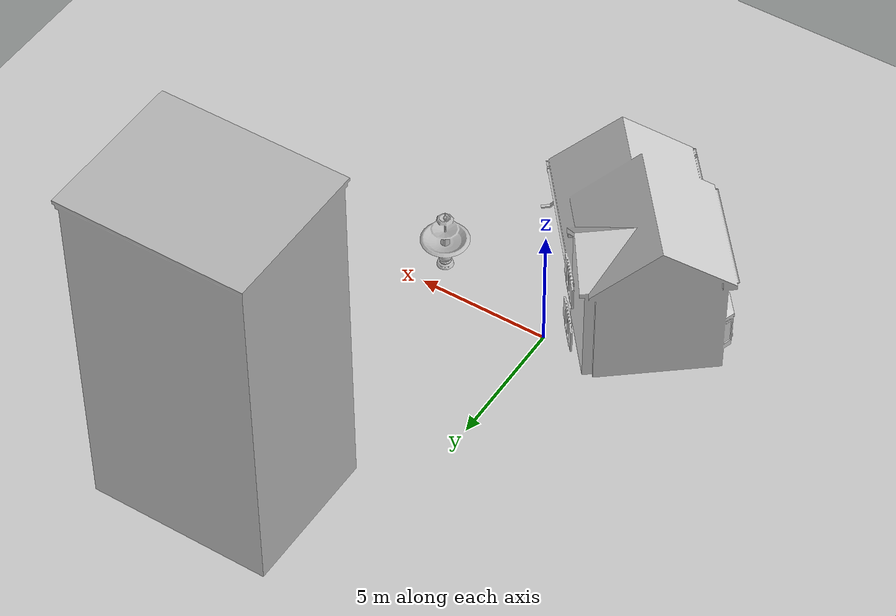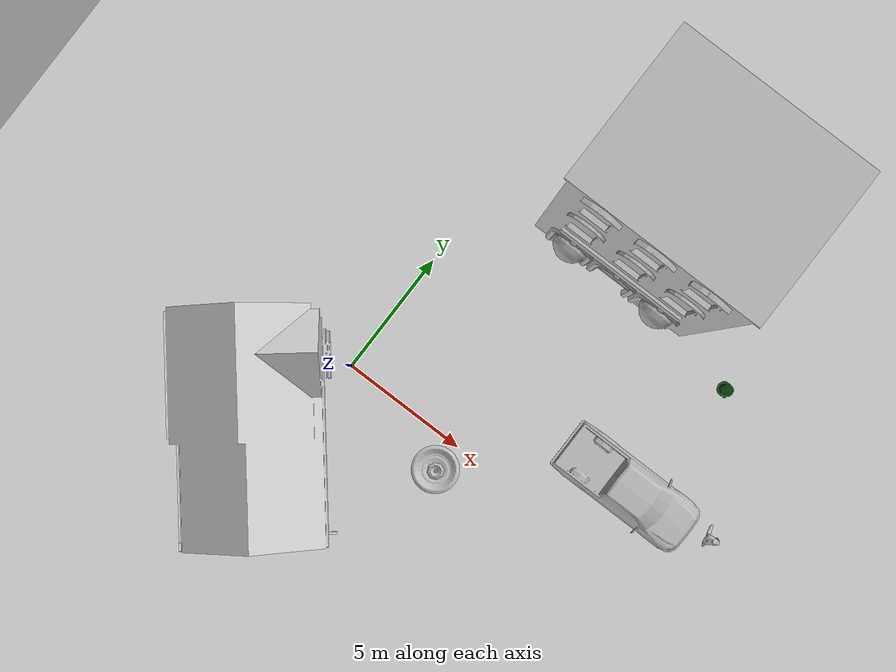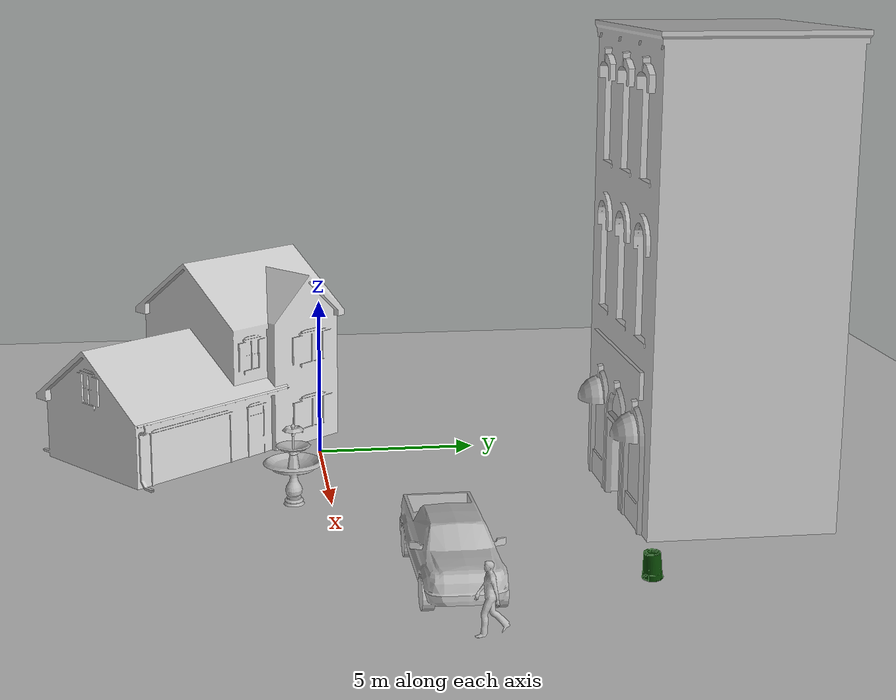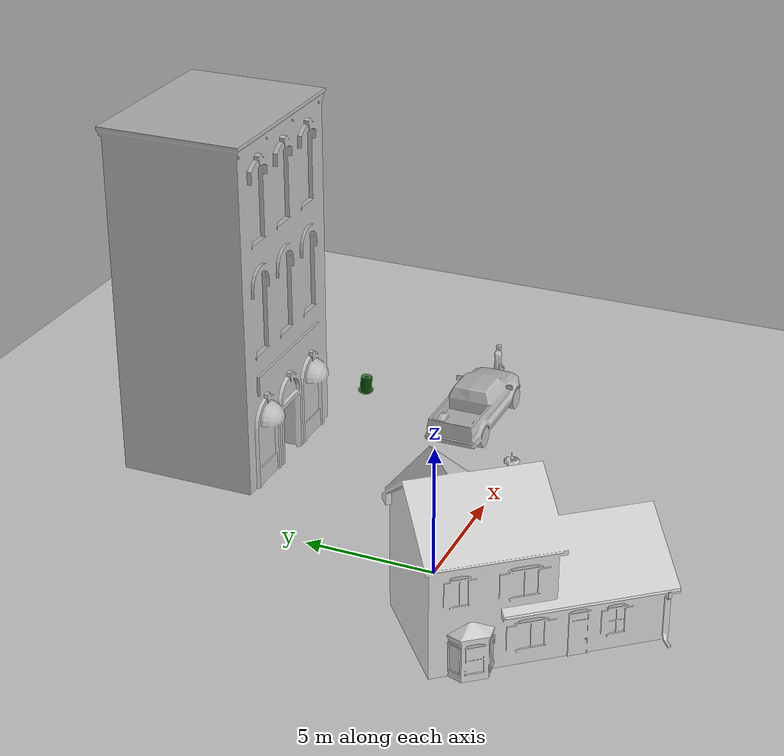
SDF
<sdf version="1.6">
 <world name="default">
  <light name="sun" type="directional">
   <pose>0 0 10 0 -0 0</pose>
   <diffuse>0.8 0.8 0.8 1</diffuse>
   <specular>0.1 0.1 0.1 1</specular>
   <attenuation>
    <range>1000</range>
    <constant>0.9</constant>
    <linear>0.01</linear>
    <quadratic>0.001</quadratic>
   </attenuation>
   <direction>-0.5 0.5 -1</direction>
  </light>
  <model name="ground_plane">
   <static>1</static>
   <link name="link">
    <collision name="collision">
     <geometry><plane><normal>0 0 1</normal><size>100 100</size></plane></geometry>
     <surface><friction><ode><mu>100</mu><mu2>50</mu2></ode></friction></surface>
    </collision>
    <visual name="visual">
     <cast_shadows>0</cast_shadows>
     <geometry><plane><normal>0 0 1</normal><size>100 100</size></plane></geometry>
     <material>
      <script><uri>file://media/materials/scripts/gazebo.material</uri><name>Gazebo/Grey</name></script>
     </material>
    </visual>
   </link>
  </model>
  <gravity>0 0 -9.8</gravity>
  <magnetic_field>6e-06 2.3e-05 -4.2e-05</magnetic_field>
  <atmosphere type="adiabatic"/>
  <physics name="default_physics" default="0" type="ode">
   <max_step_size>0.001</max_step_size>
   <real_time_factor>1</real_time_factor>
   <real_time_update_rate>1000</real_time_update_rate>
  </physics>
  <scene><ambient>0.4 0.4 0.4 1</ambient><background>0.7 0.7 0.7 1</background><shadows>1</shadows></scene>
  <spherical_coordinates>
   <surface_model>EARTH_WGS84</surface_model>
   <latitude_deg>0</latitude_deg>
   <longitude_deg>0</longitude_deg>
   <elevation>0</elevation>
   <heading_deg>0</heading_deg>
  </spherical_coordinates>
  <model name="first_2015_trash_can">
   <link name="link">
    <inertial>
     <pose>0 0 0.3683 0 -0 0</pose>
     <mass>4.83076</mass>
     <inertia>
      <ixx>0.281534</ixx>
      <ixy>0</ixy>
      <ixz>0</ixz>
      <iyy>0.281534</iyy>
      <iyz>0</iyz>
      <izz>0.126223</izz>
     </inertia>
    </inertial>
    <visual name="visual">
     <geometry>
      <mesh><uri>model://first_2015_trash_can/meshes/trash_can.dae</uri><scale>1 1 1</scale></mesh>
     </geometry>
    </visual>
    <collision name="collision">
     <geometry>
      <mesh><uri>model://first_2015_trash_can/meshes/trash_can.dae</uri><scale>1 1 1</scale></mesh>
     </geometry>
    </collision>
   </link>
   <pose>11.6113 7.77139 0.749 -3.06522 -0.004725 0.624155</pose>
  </model>
  <model name="person_walking">
   <link name="link">
    <inertial>
     <pose>0 0 0.95 0 -0 0</pose>
     <mass>80</mass>
     <inertia><ixx>27.82</ixx><ixy>0</ixy><ixz>0</ixz><iyy>24.88</iyy><iyz>0</iyz><izz>4.57</izz></inertia>
    </inertial>
    <collision name="bottom">
     <pose>0 0 0.01 0 -0 0</pose>
     <geometry><box><size>0.35 0.75 0.02</size></box></geometry>
    </collision>
    <collision name="person">
     <pose>0 0 -0.02 0 -0 0</pose>
     <geometry><mesh><uri>model://person_walking/meshes/walking.dae</uri><scale>1 1 1</scale></mesh></geometry>
    </collision>
    <visual name="visual">
     <pose>0 0 -0.02 0 -0 0</pose>
     <geometry><mesh><uri>model://person_walking/meshes/walking.dae</uri><scale>1 1 1</scale></mesh></geometry>
    </visual>
   </link>
   <pose>14.4141 3.04796 0 0 -1e-06 -0.000885</pose>
  </model>
  <model name="law_office">
   <static>1</static>
   <link name="link">
    <collision name="collision">
     <pose>0 0 6.96244 0 -0 0</pose>
     <geometry><box><size>6.84401 5.43165 13.9249</size></box></geometry>
    </collision>
    <visual name="visual">
     <geometry><mesh><uri>model://law_office/meshes/law_office.dae</uri><scale>1 1 1</scale></mesh></geometry>
    </visual>
   </link>
   <pose>5.64011 11.091 0.002541 0 -0 0</pose>
  </model>
  <model name="fountain">
   <static>1</static>
   <link name="link">
    <collision name="collision">
     <geometry><mesh><uri>model://fountain/meshes/fountain.dae</uri><scale>1 1 1</scale></mesh></geometry>
    </collision>
    <visual name="visual">
     <geometry><mesh><uri>model://fountain/meshes/fountain.dae</uri><scale>1 1 1</scale></mesh></geometry>
    </visual>
   </link>
   <pose>4.79062 -1.11221 0 0 -0 0</pose>
  </model>
  <model name="House 3">
   <static>1</static>
   <link name="link">
    <collision name="collision">
     <geometry><mesh><uri>model://house_3/meshes/house_3.dae</uri><scale>1 1 1</scale></mesh></geometry>
    </collision>
    <visual name="visual">
     <geometry><mesh><uri>model://house_3/meshes/house_3.dae</uri><scale>1 1 1</scale></mesh></geometry>
     <material>
      <script>
       <uri>model://house_3/materials/scripts</uri>
       <uri>model://house_3/materials/textures</uri>
       <name>House_3/Diffuse</name>
      </script>
     </material>
    </visual>
   </link>
   <pose>-1.21634 -4.23482 0 0 0 -0.88647</pose>
  </model>
  <model name="pickup">
   <static>1</static>
   <link name="link">
    <collision name="collision">
     <pose>0 0 0 0 0 -1.5708</pose>
     <geometry><mesh><uri>model://pickup/meshes/pickup.dae</uri><scale>1 1 1</scale></mesh></geometry>
    </collision>
    <visual name="visual">
     <pose>0 0 0 0 0 -1.5708</pose>
     <geometry><mesh><uri>model://pickup/meshes/pickup.dae</uri><scale>1 1 1</scale></mesh></geometry>
    </visual>
   </link>
   <pose>10.9855 2.64555 0 0 -0 0</pose>
  </model>
 </world>
</sdf>
